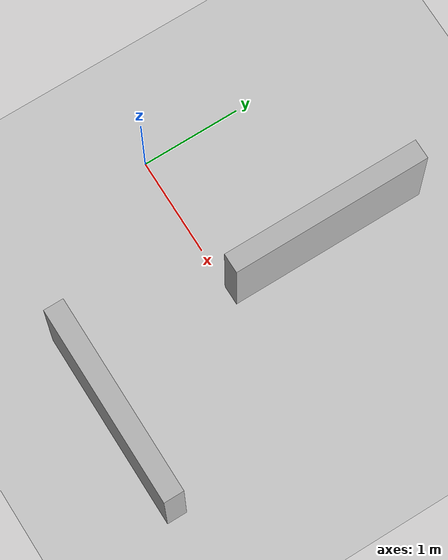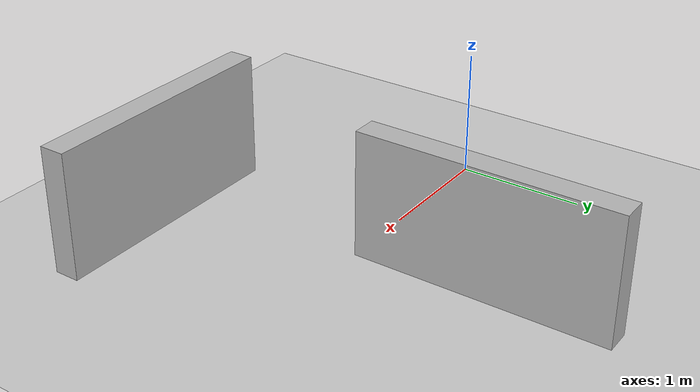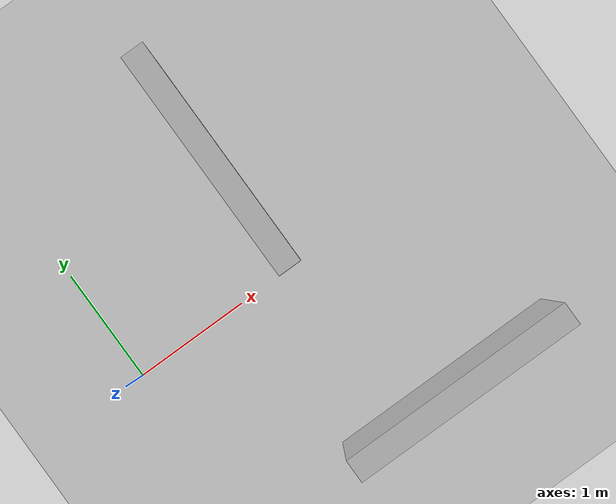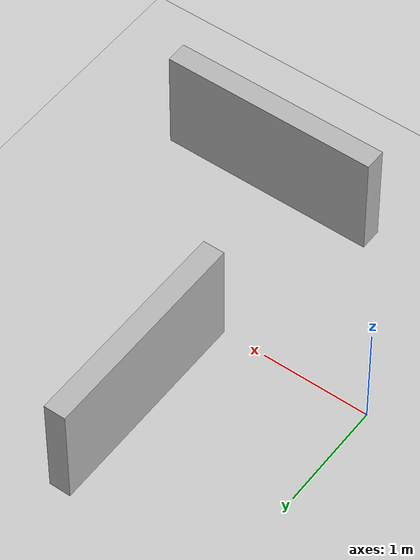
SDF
<?xml version="1.0"?>
<sdf version="1.6">
  <world name="delivery_world">
    <include>
      <uri>model://ground_plane</uri>
    </include>
    <include>
      <uri>model://sun</uri>
    </include>
    <!-- 障碍物墙1 -->
    <model name="wall1">
      <pose>1.5 1.0 0.5 0 0 0</pose>
      <link name="wall_link">
        <collision name="collision">
          <geometry>
            <box>
              <size>0.2 2.0 1.0</size>
            </box>
          </geometry>
        </collision>
        <visual name="visual">
          <geometry>
            <box>
              <size>0.2 2.0 1.0</size>
            </box>
          </geometry>
        </visual>
      </link>
    </model>
    <!-- 障碍物墙2 -->
    <model name="wall2">
      <pose>2.0 -1.5 0.5 0 0 0</pose>
      <link name="wall_link">
        <collision name="collision">
          <geometry>
            <box>
              <size>2.0 0.2 1.0</size>
            </box>
          </geometry>
        </collision>
        <visual name="visual">
          <geometry>
            <box>
              <size>2.0 0.2 1.0</size>
            </box>
          </geometry>
        </visual>
      </link>
    </model>
  </world>
</sdf>
